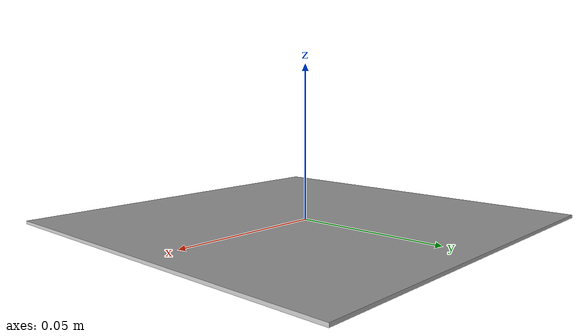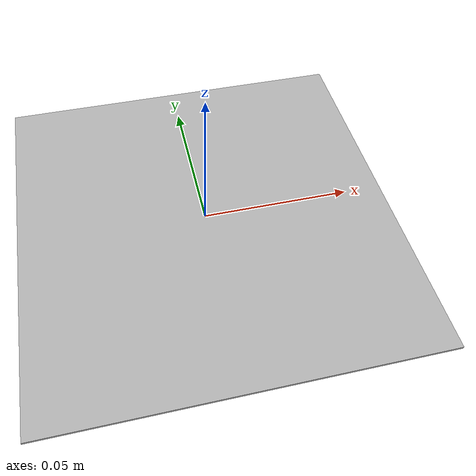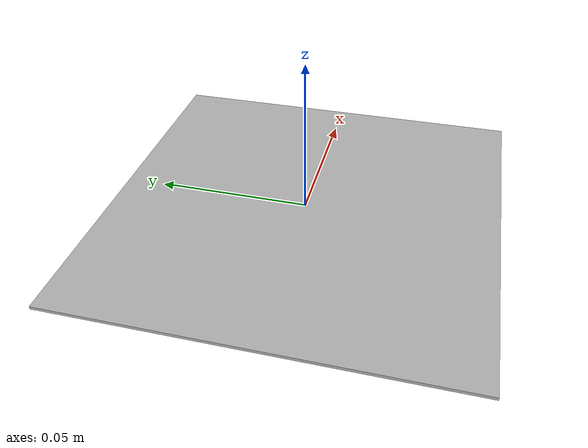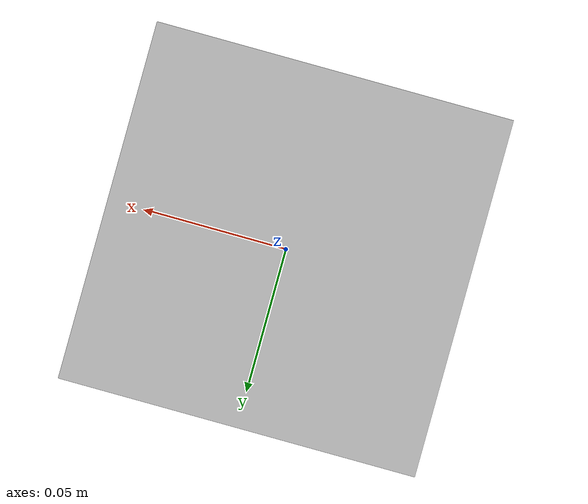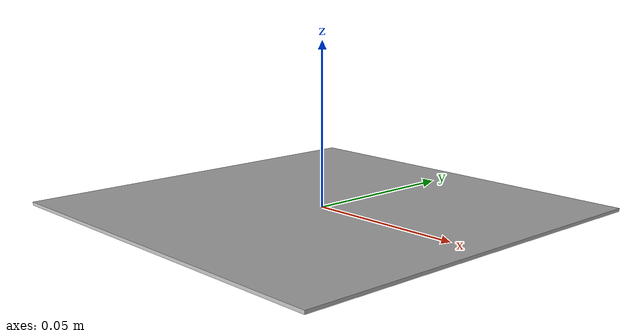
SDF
<?xml version='1.0'?>
<sdf version='1.6'>
  <model name='aruco_8'>
    <!-- Para poder moverlo y rotarlo -->
    <static>false</static>

    <link name='aruco_link'>

      <collision name='collision'>
        <geometry>
          <box>
            <!-- Rectángulo cuadrado y muy fino -->
            <size>0.125 0.125 0.001</size>
          </box>
        </geometry>
      </collision>

      <visual name='aruco_visual'>
        <geometry>
          <box>
            <!-- Igual que la colisión: 15 cm x 15 cm x 1 mm -->
            <size>0.125 0.125 0.001</size>
          </box>
        </geometry>

        <!-- Aplicamos textura SOLO a la cara frontal -->
        <material>
          <script>
            <uri>model://aruco_8/materials/scripts/</uri>
            <uri>model://aruco_8/materials/textures/</uri>
            <name>aruco_8/aruco_8_material</name>
          </script>
        </material>
      </visual>

      <!-- Que pese algo para moverlo fácil -->
      <inertial>
        <mass>0.01</mass>
        <inertia>
          <ixx>0.00001</ixx>
          <iyy>0.00001</iyy>
          <izz>0.00001</izz>
        </inertia>
      </inertial>

      <!-- ORIENTACIÓN VERTICAL -->
      <pose>0 0 0 0 0 1.5708</pose>

    </link>
  </model>
</sdf>
